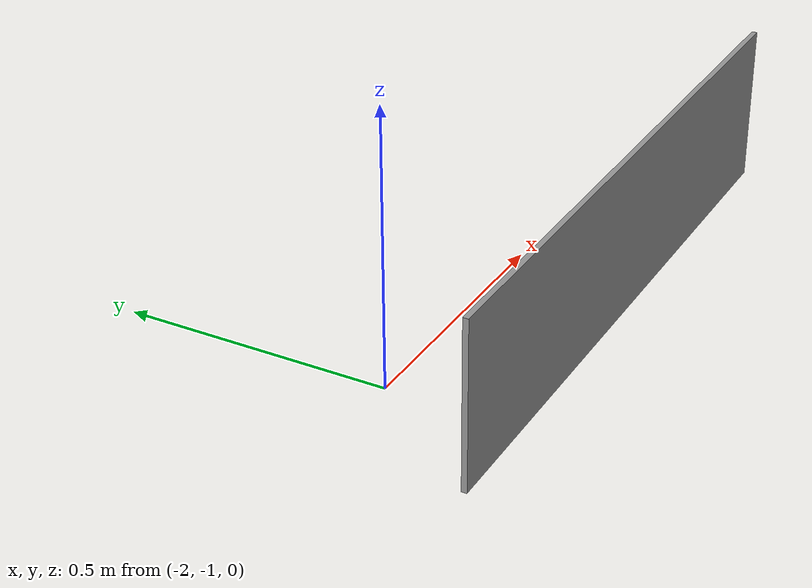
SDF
<?xml version='1.0'?>
<sdf version='1.7'>
  <model name='FUSTA_1.2'>
    <pose>-1.0925 -0.6225 0 0 -0 0</pose>
    <link name='Wall_0'>
      <collision name='Wall_0_Collision'>
        <geometry>
          <box>
            <size>1.2 0.01 0.3</size>
          </box>
        </geometry>
        <pose>0 0 0.15 0 -0 0</pose>
      </collision>
      <visual name='Wall_0_Visual'>
        <pose>0 0 0.15 0 -0 0</pose>
        <geometry>
          <box>
            <size>1.2 0.01 0.3</size>
          </box>
        </geometry>
        <material>
          <script>
            <uri>file://media/materials/scripts/gazebo.material</uri>
            <name>Gazebo/Grey</name>
          </script>
          <ambient>1 1 1 1</ambient>
        </material>
        <meta>
          <layer>0</layer>
        </meta>
      </visual>
      <pose>-0.4925 -0.6175 0 0 -0 0</pose>
    </link>
    <static>1</static>
  </model>
</sdf>
